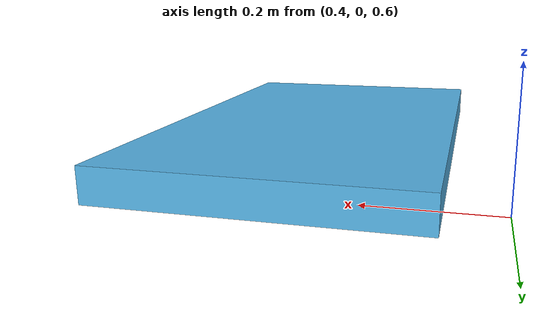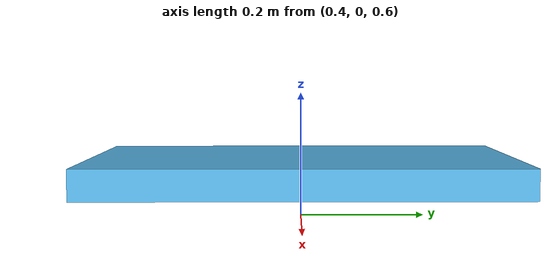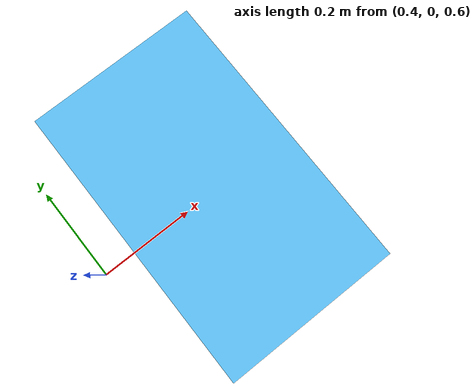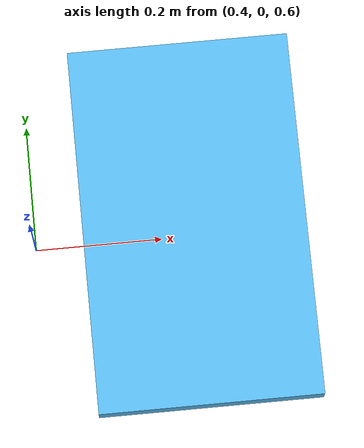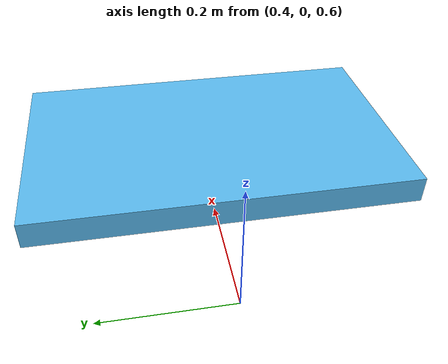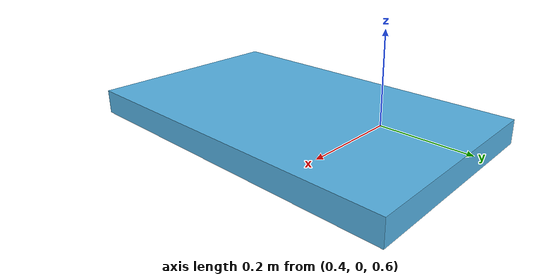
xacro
<?xml version="1.0"?>
<robot xmlns:xacro="http://ros.org/wiki/xacro" name="tablet">
<!--       xmlns:xi="http://www.w3.org/2001/XInclude"-->
<!--       xmlns:gazebo="http://playerstage.sourceforge.net/gazebo/xmlschema/#gz"-->
<!--       xmlns:model="http://playerstage.sourceforge.net/gazebo/xmlschema/#model"-->
<!--       xmlns:sensor="http://playerstage.sourceforge.net/gazebo/xmlschema/#sensor"-->
<!--       xmlns:body="http://playerstage.sourceforge.net/gazebo/xmlschema/#body"-->
<!--       xmlns:geom="http://playerstage.sourceforge.net/gazebo/xmlschema/#geom"-->
<!--       xmlns:joint="http://playerstage.sourceforge.net/gazebo/xmlschema/#joint"-->
<!--       xmlns:interface="http://playerstage.sourceforge.net/gazebo/xmlschema/#interface"-->
<!--       xmlns:rendering="http://playerstage.sourceforge.net/gazebo/xmlschema/#rendering"-->
<!--       xmlns:renderable="http://playerstage.sourceforge.net/gazebo/xmlschema/#renderable"-->
<!--       xmlns:controller="http://playerstage.sourceforge.net/gazebo/xmlschema/#controller"-->
<!--       xmlns:physics="http://playerstage.sourceforge.net/gazebo/xmlschema/#physics">-->

	<!-- The table under -->
  <xacro:property name="table_x" value="0.65" />
  <xacro:property name="table_y" value="0.0" />
  <xacro:property name="table_height" value="0.68" />

	<!-- The tablet -->
  <xacro:property name="tablet_height" value="0.345" />
  <xacro:property name="tablet_width" value="0.57" />
  <xacro:property name="tablet_depth" value="0.04" />
  <xacro:property name="tablet_x" value="${table_x}" />
  <xacro:property name="tablet_y" value="${table_y}" />
  <xacro:property name="tablet_z" value="${table_height+tablet_depth/2}" />

  <!-- World -->
  <link name="world">
  </link>

  <!-- World fixed joint-->
  <joint name="world_to_base_link" type="fixed">
    <origin xyz="${tablet_x} ${tablet_y} ${table_height+tablet_depth/2}" rpy="0 0 0"/>
    <parent link="world"/>
    <child link="tablet"/>
  </joint>

  <link name="tablet">
    <visual>
      <geometry>
        <box size="${tablet_height} ${tablet_width} ${tablet_depth}"/>
      </geometry>
    </visual>
    <collision>
      <origin xyz="0 0 0" />
      <geometry>
        <box size="${tablet_height} ${tablet_width} ${tablet_depth}"/>
      </geometry>
    </collision>
    <inertial>
      <origin xyz="0 0 0" />
      <mass value="0.1" />
      <inertia ixx="0.001" ixy="0.0" ixz="0.0"
               iyy="0.001" iyz="0.0"
               izz="0.001" />
    </inertial>
  </link>

</robot>
